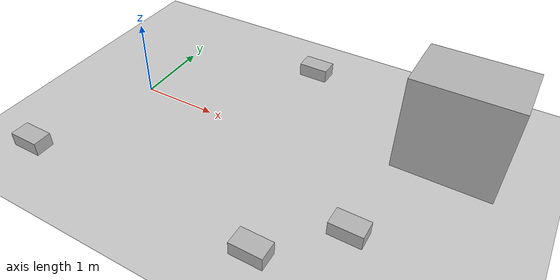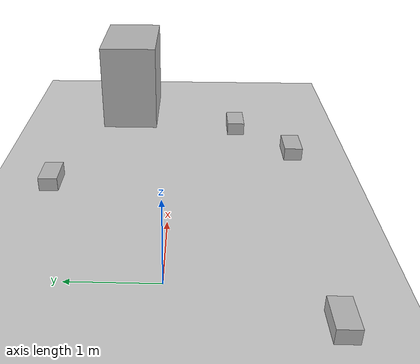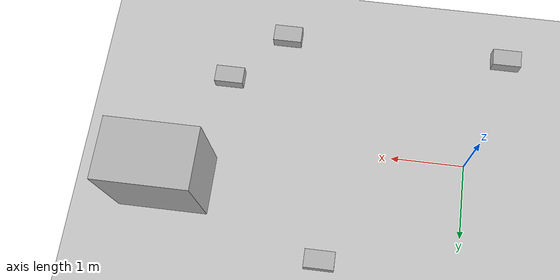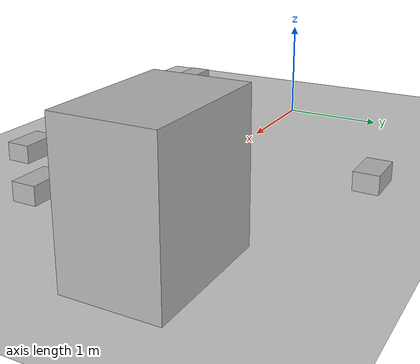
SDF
<sdf version="1.6">
 <world name="default">
  <light name="sun" type="directional">
   <pose>0 0 10 0 -0 0</pose>
   <diffuse>0.8 0.8 0.8 1</diffuse>
   <specular>0.2 0.2 0.2 1</specular>
   <attenuation>
    <range>1000</range>
    <constant>0.9</constant>
    <linear>0.01</linear>
    <quadratic>0.001</quadratic>
   </attenuation>
   <direction>-0.5 0.1 -0.9</direction>
  </light>
  <model name="ground_plane">
   <static>1</static>
   <link name="link">
    <collision name="collision">
     <geometry><plane><normal>0 0 1</normal><size>100 100</size></plane></geometry>
     <surface>
      <contact><collide_bitmask>65535</collide_bitmask></contact>
      <friction><ode><mu>100</mu><mu2>50</mu2></ode></friction>
     </surface>
    </collision>
    <visual name="visual">
     <cast_shadows>0</cast_shadows>
     <geometry><plane><normal>0 0 1</normal><size>100 100</size></plane></geometry>
     <material>
      <script><uri>file://media/materials/scripts/gazebo.material</uri><name>Gazebo/Grey</name></script>
     </material>
    </visual>
   </link>
  </model>
  <gravity>0 0 -9.8</gravity>
  <magnetic_field>6e-06 2.3e-05 -4.2e-05</magnetic_field>
  <atmosphere type="adiabatic"/>
  <physics name="default_physics" default="0" type="ode">
   <max_step_size>0.001</max_step_size>
   <real_time_factor>1</real_time_factor>
   <real_time_update_rate>1000</real_time_update_rate>
  </physics>
  <scene><ambient>0.4 0.4 0.4 1</ambient><background>0.7 0.7 0.7 1</background><shadows>1</shadows></scene>
  <audio><device>default</device></audio>
  <spherical_coordinates>
   <surface_model>EARTH_WGS84</surface_model>
   <latitude_deg>0</latitude_deg>
   <longitude_deg>0</longitude_deg>
   <elevation>0</elevation>
   <heading_deg>0</heading_deg>
  </spherical_coordinates>
  <model name="small box">
   <pose>1.81175 1.51866 0.089498 -0.004341 -1.5e-05 -2e-06</pose>
   <static>0</static>
   <link name="link">
    <inertial>
     <mass>2</mass>
     <inertia>
      <ixx>0.000861167</ixx>
      <ixy>0</ixy>
      <ixz>0</ixz>
      <iyy>0.000861167</iyy>
      <iyz>0</iyz>
      <izz>0.000861167</izz>
     </inertia>
    </inertial>
    <collision name="collision">
     <geometry><box><size>0.4 0.23 0.18</size></box></geometry>
     <surface><contact><ode><max_vel>0.1</max_vel><min_depth>0.001</min_depth></ode></contact></surface>
    </collision>
    <visual name="visual">
     <geometry><mesh><uri>model://small_box/meshes/small_box.dae</uri></mesh></geometry>
    </visual>
   </link>
  </model>
  <model name="small box_0">
   <pose>3.39115 -0.920826 0.089498 -0.004349 -5e-06 5e-06</pose>
   <static>0</static>
   <link name="link">
    <inertial>
     <mass>2</mass>
     <inertia>
      <ixx>0.000861167</ixx>
      <ixy>0</ixy>
      <ixz>0</ixz>
      <iyy>0.000861167</iyy>
      <iyz>0</iyz>
      <izz>0.000861167</izz>
     </inertia>
    </inertial>
    <collision name="collision">
     <geometry><box><size>0.4 0.23 0.18</size></box></geometry>
     <surface><contact><ode><max_vel>0.1</max_vel><min_depth>0.001</min_depth></ode></contact></surface>
    </collision>
    <visual name="visual">
     <geometry><mesh><uri>model://small_box/meshes/small_box.dae</uri></mesh></geometry>
    </visual>
   </link>
  </model>
  <model name="small box_1">
   <pose>-0.500273 -1.64273 0.089499 -0.004349 0 5e-06</pose>
   <static>0</static>
   <link name="link">
    <inertial>
     <mass>2</mass>
     <inertia>
      <ixx>0.000861167</ixx>
      <ixy>0</ixy>
      <ixz>0</ixz>
      <iyy>0.000861167</iyy>
      <iyz>0</iyz>
      <izz>0.000861167</izz>
     </inertia>
    </inertial>
    <collision name="collision">
     <geometry><box><size>0.4 0.23 0.18</size></box></geometry>
     <surface><contact><ode><max_vel>0.1</max_vel><min_depth>0.001</min_depth></ode></contact></surface>
    </collision>
    <visual name="visual">
     <geometry><mesh><uri>model://small_box/meshes/small_box.dae</uri></mesh></geometry>
    </visual>
   </link>
  </model>
  <model name="Big box 4">
   <pose>3.9894 0.672307 0.62491 0 0.000143 0</pose>
   <static>0</static>
   <link name="link">
    <inertial>
     <mass>40</mass>
     <inertia><ixx>1</ixx><ixy>0</ixy><ixz>0</ixz><iyy>1</iyy><iyz>0</iyz><izz>1</izz></inertia>
    </inertial>
    <collision name="collision">
     <geometry><box><size>1.2 0.8 1.25</size></box></geometry>
     <surface><contact><ode><max_vel>0.1</max_vel><min_depth>0.001</min_depth></ode></contact></surface>
    </collision>
    <visual name="visual">
     <geometry><mesh><uri>model://big_box4/meshes/big_box.dae</uri></mesh></geometry>
    </visual>
   </link>
  </model>
  <model name="small box_2">
   <pose>2.65589 -1.65637 0.089511 -0.004119 2.4e-05 1.1e-05</pose>
   <static>0</static>
   <link name="link">
    <inertial>
     <mass>2</mass>
     <inertia>
      <ixx>0.000861167</ixx>
      <ixy>0</ixy>
      <ixz>0</ixz>
      <iyy>0.000861167</iyy>
      <iyz>0</iyz>
      <izz>0.000861167</izz>
     </inertia>
    </inertial>
    <collision name="collision">
     <geometry><box><size>0.4 0.23 0.18</size></box></geometry>
     <surface><contact><ode><max_vel>0.1</max_vel><min_depth>0.001</min_depth></ode></contact></surface>
    </collision>
    <visual name="visual">
     <geometry><mesh><uri>model://small_box/meshes/small_box.dae</uri></mesh></geometry>
    </visual>
   </link>
  </model>
 </world>
</sdf>
